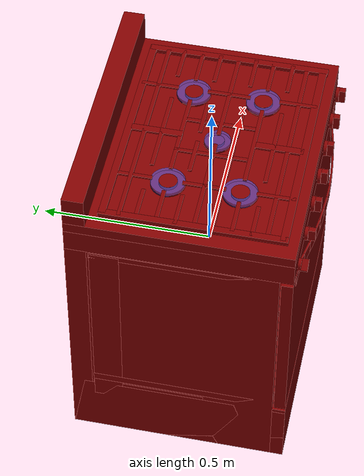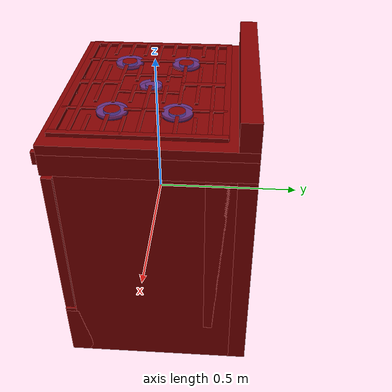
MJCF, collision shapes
<?xml version='1.0' encoding='UTF-8'?>
<mujoco model="model">
  <option timestep="0.002" gravity="0.0 0.0 -9.81"/>
  <compiler angle="radian"/>
  <asset>
    <mesh file="visuals/knob_center.obj" name="knob_center_vis"/>
    <mesh file="visuals/knob_front_left.obj" name="knob_front_left_vis"/>
    <mesh file="visuals/knob_front_right.obj" name="knob_front_right_vis"/>
    <mesh file="visuals/knob_rear_left.obj" name="knob_rear_left_vis"/>
    <mesh file="visuals/knob_rear_right.obj" name="knob_rear_right_vis"/>
    <mesh file="visuals/Body001.obj" name="Body001_vis"/>
    <mesh file="visuals/Door001.obj" name="Door001_vis"/>
    <mesh file="visuals/Door001_Clear.obj" name="Door001_Clear_vis"/>
    <mesh file="visuals/Knob001.obj" name="Knob001_vis"/>
    <mesh file="visuals/Knob002.obj" name="Knob002_vis"/>
    <mesh file="visuals/Shelf001.obj" name="Shelf001_vis"/>
    <texture file="visuals/T_BC001.png" name="Body001_material" type="2d"/>
    <material name="Body001_material" rgba="1 1 1 1.0" texture="Body001_material" shininess="0.05" specular="3"/>
    <texture file="visuals/T_BC001.png" name="knob_center_material" type="2d"/>
    <material name="knob_center_material" rgba="1 1 1 1.0" texture="knob_center_material" shininess="0.1" specular="1"/>
    <texture file="visuals/T_BC001.png" name="knob_front_left_material" type="2d"/>
    <material name="knob_front_left_material" rgba="1 1 1 1.0" texture="knob_front_left_material" shininess="0.1" specular="1"/>
    <texture file="visuals/T_BC001.png" name="knob_front_right_material" type="2d"/>
    <material name="knob_front_right_material" rgba="1 1 1 1.0" texture="knob_front_right_material" shininess="0.1" specular="1"/>
    <texture file="visuals/T_BC001.png" name="knob_rear_left_material" type="2d"/>
    <material name="knob_rear_left_material" rgba="1 1 1 1.0" texture="knob_rear_left_material" shininess="0.1" specular="1"/>
    <texture file="visuals/T_BC001.png" name="knob_rear_right_material" type="2d"/>
    <material name="knob_rear_right_material" rgba="1 1 1 1.0" texture="knob_rear_right_material" shininess="0.1" specular="1"/>
    <texture file="visuals/T_BC001.png" name="Door001_material" type="2d"/>
    <material name="Door001_material" rgba="1 1 1 1.0" texture="Door001_material" shininess="0.1" specular="2"/>
    <texture file="visuals/T_BC001.png" name="Door001_Clear_material" type="2d"/>
    <material name="Door001_Clear_material" rgba="1 1 1 0.5" texture="Door001_Clear_material" shininess="0.1" specular="1"/>
    <texture file="visuals/T_BC001.png" name="Knob001_material" type="2d"/>
    <material name="Knob001_material" rgba="1 1 1 1.0" texture="Knob001_material" shininess="0.1" specular="1"/>
    <texture file="visuals/T_BC001.png" name="Knob002_material" type="2d"/>
    <material name="Knob002_material" rgba="1 1 1 1.0" texture="Knob002_material" shininess="0.1" specular="1"/>
    <texture file="visuals/T_BC001.png" name="Shelf001_material" type="2d"/>
    <material name="Shelf001_material" rgba="1 1 1 1.0" texture="Shelf001_material" shininess="0.1" specular="1"/>
  </asset>
  <default>
    <default class="visual">
      <geom conaffinity="0" contype="0" group="1" type="mesh"/>
    </default>
    <default class="collision">
      <geom group="0" rgba="0.5 0 0 0.5"/>
    </default>
    <default class="spawn">
      <geom group="0" rgba="1 1 1 0.5" contype="0" conaffinity="0"/>
      <site group="0" rgba="1 1 1 0.5"/>
    </default>
    <default class="region">
      <geom group="1" conaffinity="0" contype="0" rgba="0 1 0 0"/>
    </default>
  </default>
  <worldbody>
    <body>
      <body name="object">
        <geom mesh="Body001_vis" type="mesh" solimp="0.998 0.998 0.001" solref="0.001 1" friction="0.95 0.3 0.1" class="visual" material="Body001_material"/>
        <geom class="collision" type="box" pos="6.490154191851616e-07 0.30399298667907715 -0.0001319174189120531" size="0.030633114278316498 0.37950000166893005 0.4929412603378296" quat="0.70710688829422 0.0 0.0 -0.7071066498756409" density="1000.0"/>
        <geom class="collision" type="box" pos="9.133946150541306e-07 0.016015609726309776 0.38297146558761597" size="0.3186107873916626 0.3795003592967987 0.016051506623625755" quat="0.70710688829422 0.0 0.0 -0.7071066498756409" density="1000.0"/>
        <geom class="collision" type="box" pos="-0.3719644546508789 0.005501424893736839 -0.09880691766738892" size="0.007534541189670563 0.26959094405174255 0.3942662477493286" quat="6.715443419125222e-07 0.0 0.0 1.0" density="1000.0"/>
        <geom class="collision" type="box" pos="0.3719663619995117 0.005501288454979658 -0.0988069400191307" size="0.007534429896622896 0.26959091424942017 0.3942663073539734" quat="6.715443419125222e-07 0.0 0.0 1.0" density="1000.0"/>
        <geom class="collision" type="box" pos="-0.0003282291581854224 0.002114064060151577 0.28348594903945923" size="0.2660907208919525 0.3791709840297699 0.009091421961784363" quat="0.70710688829422 0.0 0.0 -0.7071066498756409" density="1000.0"/>
        <geom class="collision" type="box" pos="-0.0003283511323388666 0.0025597289204597473 -0.2571186423301697" size="0.2656450569629669 0.37917110323905945 0.01277067605406046" quat="0.70710688829422 0.0 0.0 -0.7071066498756409" density="1000.0"/>
        <geom class="collision" type="box" pos="-0.0003282290417701006 -0.01719513349235058 -0.38388580083847046" size="0.2853999137878418 0.3791709840297699 0.10918741673231125" quat="0.70710688829422 0.0 0.0 -0.7071066498756409" density="1000.0"/>
        <geom class="collision" type="box" pos="9.200302883982658e-07 0.2244304120540619 -0.02571159601211548" size="0.04224157705903053 0.37950021028518677 0.3127388656139374" quat="0.70710688829422 0.0 0.0 -0.7071066498756409" density="1000.0"/>
        <geom class="collision" type="box" pos="5.369074642658234e-07 0.016116617247462273 -0.39065417647361755" size="0.31850945949554443 0.37949976325035095 0.10241898894309998" quat="0.70710688829422 0.0 0.0 -0.7071066498756409" density="1000.0"/>
        <geom class="collision" type="box" pos="-0.33037447929382324 -0.014261286705732346 0.41151177883148193" size="0.26057958602905273 0.010054773651063442 0.006183722987771034" quat="0.70710688829422 0.0 0.0 -0.7071066498756409" density="1000.0"/>
        <geom class="collision" type="box" pos="0.002468489110469818 0.23599036037921906 0.4131770730018616" size="0.3365636169910431 0.010054755955934525 0.0045184302143752575" quat="1.0 0.0 0.0 1.1920928955078125e-07" density="1000.0"/>
        <geom class="collision" type="box" pos="0.0024684888776391745 -0.26342928409576416 0.4114576578140259" size="0.3365636169910431 0.0110505111515522 0.0062378705479204655" quat="1.0 0.0 0.0 1.1920928955078125e-07" density="1000.0"/>
        <geom class="collision" type="box" pos="0.0024684893433004618 0.18982408940792084 0.41370946168899536" size="0.3365636169910431 0.0055762045085430145 0.003986050840467215" quat="1.0 0.0 0.0 1.1920928955078125e-07" density="1000.0"/>
        <geom class="collision" type="box" pos="-0.28049707412719727 0.14360125362873077 0.4143890142440796" size="0.05359805375337601 0.005576271563768387 0.002830306999385357" quat="1.0 0.0 0.0 1.1920928955078125e-07" density="1000.0"/>
        <geom class="collision" type="box" pos="1.9490253180265427e-05 0.15509746968746185 0.41450071334838867" size="0.010665911249816418 0.07293067127466202 0.0031948338728398085" quat="1.0 0.0 0.0 1.1920928955078125e-07" density="1000.0"/>
        <geom class="collision" type="box" pos="1.9490253180265427e-05 -0.18734626471996307 0.4142610430717468" size="0.010665911249816418 0.07293067127466202 0.003434491576626897" quat="1.0 0.0 0.0 1.1920928955078125e-07" density="1000.0"/>
        <geom class="collision" type="box" pos="-0.28049707412719727 0.03528386354446411 0.4148651957511902" size="0.05359805375337601 0.005576271563768387 0.002830306999385357" quat="1.0 0.0 0.0 1.1920928955078125e-07" density="1000.0"/>
        <geom class="collision" type="box" pos="-0.27441197633743286 0.08756069839000702 0.4141765832901001" size="0.05359805375337601 0.005576271563768387 0.002830306999385357" quat="1.0 0.0 0.0 1.1920928955078125e-07" density="1000.0"/>
        <geom class="collision" type="box" pos="-0.27441197633743286 -0.12051914632320404 0.4148651957511902" size="0.05359805375337601 0.005576271563768387 0.002830306999385357" quat="1.0 0.0 0.0 1.1920928955078125e-07" density="1000.0"/>
        <geom class="collision" type="box" pos="-0.28049707412719727 -0.17510093748569489 0.4148651957511902" size="0.05359805375337601 0.005576271563768387 0.002830306999385357" quat="1.0 0.0 0.0 1.1920928955078125e-07" density="1000.0"/>
        <geom class="collision" type="box" pos="-0.28049707412719727 -0.06756002455949783 0.4148651957511902" size="0.05359805375337601 0.005576271563768387 0.002830306999385357" quat="1.0 0.0 0.0 1.1920928955078125e-07" density="1000.0"/>
        <geom class="collision" type="box" pos="-0.0057657212018966675 -0.21665716171264648 0.41435760259628296" size="0.3283294439315796 0.005841467063874006 0.0033379136584699154" quat="1.0 0.0 0.0 1.1920928955078125e-07" density="1000.0"/>
        <geom class="collision" type="box" pos="0.001403681468218565 -0.1757647693157196 0.4144964814186096" size="0.13427776098251343 0.005576252471655607 0.003199012018740177" quat="1.0 0.0 0.0 1.1920928955078125e-07" density="1000.0"/>
        <geom class="collision" type="box" pos="-8.993595838546753e-05 -0.12000279128551483 0.4144352078437805" size="0.13676711916923523 0.00557625200599432 0.003260307013988495" quat="1.0 0.0 0.0 1.1920928955078125e-07" density="1000.0"/>
        <geom class="collision" type="box" pos="-0.18092212080955505 -0.21526284515857697 0.4148651957511902" size="0.05359805375337601 0.005576271563768387 0.002830306999385357" quat="0.7071067094802856 0.0 0.0 0.7071068286895752" density="1000.0"/>
        <geom class="collision" type="box" pos="-0.18092212080955505 -0.016192562878131866 0.414198100566864" size="0.0605284757912159 0.005576270632445812 0.002830306999385357" quat="0.7071067094802856 0.0 0.0 0.7071068286895752" density="1000.0"/>
        <geom class="collision" type="box" pos="-0.1706777662038803 -0.01651269942522049 0.414198100566864" size="0.15144698321819305 0.005576241295784712 0.002830306999385357" quat="3.1391647326017846e-07 0.0 -0.0 -1.0" density="1000.0"/>
        <geom class="collision" type="box" pos="-0.17953912913799286 0.1820092797279358 0.4143890142440796" size="0.05207677185535431 0.005576271563768387 0.002830306999385357" quat="0.7071067094802856 0.0 0.0 0.7071068286895752" density="1000.0"/>
        <geom class="collision" type="box" pos="-0.06137989088892937 -0.011545727029442787 0.4148651957511902" size="0.10434146970510483 0.005576263647526503 0.002830306999385357" quat="0.7071067094802856 0.0 0.0 0.7071068286895752" density="1000.0"/>
        <geom class="collision" type="box" pos="0.000702686607837677 0.08775985240936279 0.4148651957511902" size="0.1360461413860321 0.00557623989880085 0.002830306999385357" quat="1.9470718370939721e-07 0.0 0.0 -1.0" density="1000.0"/>
        <geom class="collision" type="box" pos="0.0010124444961547852 0.14123158156871796 0.4148651957511902" size="0.13385549187660217 0.005576240364462137 0.002830306999385357" quat="1.9470718370939721e-07 0.0 0.0 -1.0" density="1000.0"/>
        <geom class="collision" type="box" pos="-0.07605856657028198 0.03528386354446411 0.4148651957511902" size="0.056784454733133316 0.005576270166784525 0.002830306999385357" quat="1.9470718370939721e-07 0.0 0.0 -1.0" density="1000.0"/>
        <geom class="collision" type="box" pos="-0.07605856657028198 -0.06747753173112869 0.414276659488678" size="0.056784454733133316 0.005576270166784525 0.00341887422837317" quat="1.9470718370939721e-07 0.0 0.0 -1.0" density="1000.0"/>
        <geom class="collision" type="box" pos="0.07501205801963806 0.03633521497249603 0.4148651957511902" size="0.056784454733133316 0.005576270166784525 0.002830306999385357" quat="1.0 0.0 0.0 1.5099580252808664e-07" density="1000.0"/>
        <geom class="collision" type="box" pos="0.07501205801963806 -0.06727828830480576 0.41418278217315674" size="0.056784454733133316 0.005576270166784525 0.002830306999385357" quat="1.0 0.0 0.0 1.5099580252808664e-07" density="1000.0"/>
        <geom class="collision" type="box" pos="0.1696312427520752 -0.016674689948558807 0.4148651957511902" size="0.15144698321819305 0.005576241295784712 0.002830306999385357" quat="1.0 0.0 0.0 3.2584136988589307e-07" density="1000.0"/>
        <geom class="collision" type="box" pos="0.18131673336029053 -0.015869412571191788 0.4148651957511902" size="0.06144813075661659 0.005576270632445812 0.002830306999385357" quat="0.7071068286895752 0.0 0.0 -0.7071067690849304" density="1000.0"/>
        <geom class="collision" type="box" pos="0.17987559735774994 0.1841205209493637 0.4148651957511902" size="0.05359805375337601 0.005576271563768387 0.002830306999385357" quat="0.7071068286895752 0.0 0.0 -0.7071067690849304" density="1000.0"/>
        <geom class="collision" type="box" pos="0.27945059537887573 0.03641770780086517 0.4148651957511902" size="0.05359805375337601 0.005576271563768387 0.002830306999385357" quat="1.9470718370939721e-07 0.0 -0.0 -1.0" density="1000.0"/>
        <geom class="collision" type="box" pos="0.27945059537887573 0.14395861327648163 0.4148651957511902" size="0.05359805375337601 0.005576271563768387 0.002830306999385357" quat="1.9470718370939721e-07 0.0 -0.0 -1.0" density="1000.0"/>
        <geom class="collision" type="box" pos="0.27336543798446655 0.08937682211399078 0.4148651957511902" size="0.05359805375337601 0.005576271563768387 0.002830306999385357" quat="1.9470718370939721e-07 0.0 -0.0 -1.0" density="1000.0"/>
        <geom class="collision" type="box" pos="0.27336543798446655 -0.12004134058952332 0.4148651957511902" size="0.05359805375337601 0.005576271563768387 0.002830306999385357" quat="1.9470718370939721e-07 0.0 -0.0 -1.0" density="1000.0"/>
        <geom class="collision" type="box" pos="0.27945059537887573 -0.06776450574398041 0.4148651957511902" size="0.05359805375337601 0.005576271563768387 0.002830306999385357" quat="1.9470718370939721e-07 0.0 -0.0 -1.0" density="1000.0"/>
        <geom class="collision" type="box" pos="0.27945059537887573 -0.17550194263458252 0.4148651957511902" size="0.05359805375337601 0.005576271563768387 0.002830306999385357" quat="1.9470718370939721e-07 0.0 -0.0 -1.0" density="1000.0"/>
        <geom class="collision" type="box" pos="0.3293280005455017 -0.016881028190255165 0.41151177883148193" size="0.26057958602905273 0.010054773651063442 0.006183722987771034" quat="0.7071067094802856 0.0 0.0 0.70710688829422" density="1000.0"/>
        <geom class="collision" type="box" pos="0.061096321791410446 -0.011545727029442787 0.4136509299278259" size="0.10434146970510483 0.005576263647526503 0.002830306999385357" quat="0.7071067094802856 0.0 0.0 0.7071068286895752" density="1000.0"/>
        <geom class="collision" type="box" pos="0.18116851150989532 -0.21526284515857697 0.4148651957511902" size="0.05359805375337601 0.005576271563768387 0.002830306999385357" quat="0.7071067094802856 0.0 0.0 0.7071068286895752" density="1000.0"/>
        <geom class="collision" type="box" pos="1.9490278646117076e-05 0.08948928117752075 0.40053272247314453" size="0.010665927082300186 0.006059292703866959 0.01204557716846466" quat="1.0 0.0 0.0 1.1920928955078125e-07" density="1000.0"/>
        <geom class="collision" type="box" pos="-0.05795891210436821 -0.25993072986602783 0.40053272247314453" size="0.0054969689808785915 0.007363713346421719 0.01204557716846466" quat="1.0 0.0 0.0 1.1920928955078125e-07" density="1000.0"/>
        <geom class="collision" type="box" pos="0.057938527315855026 -0.25993072986602783 0.40053272247314453" size="0.0054969689808785915 0.007363713346421719 0.01204557716846466" quat="1.0 0.0 0.0 1.1920928955078125e-07" density="1000.0"/>
        <geom class="collision" type="box" pos="0.32452547550201416 -0.17582465708255768 0.40053272247314453" size="0.005496969446539879 0.0050818282179534435 0.01204557716846466" quat="1.0 0.0 0.0 1.1920928955078125e-07" density="1000.0"/>
        <geom class="collision" type="box" pos="0.32452547550201416 0.1457701474428177 0.40053272247314453" size="0.005496969446539879 0.0050818282179534435 0.01204557716846466" quat="1.0 0.0 0.0 1.1920928955078125e-07" density="1000.0"/>
        <geom class="collision" type="box" pos="-0.3249397873878479 0.14415450394153595 0.40053272247314453" size="0.005496969446539879 0.0050818282179534435 0.01204557716846466" quat="1.0 0.0 0.0 1.1920928955078125e-07" density="1000.0"/>
        <geom class="collision" type="box" pos="-0.3249397873878479 -0.17582465708255768 0.40053272247314453" size="0.005496969446539879 0.0050818282179534435 0.01204557716846466" quat="1.0 0.0 0.0 1.1920928955078125e-07" density="1000.0"/>
        <geom class="collision" type="cylinder" pos="-0.17786778509616852 -0.11678841710090637 0.3877210021018982" size="0.06750943511724472 0.0062187351286411285" quat="1.0 0.0 0.0 0.0" density="1000.0"/>
        <geom class="collision" type="cylinder" pos="-0.17911508679389954 -0.11659633368253708 0.397458553314209" size="0.04891488328576088 0.005066108424216509" quat="1.0 0.0 0.0 0.0" density="1000.0"/>
        <geom class="collision" type="cylinder" pos="-0.17911508679389954 -0.11659633368253708 0.40756863355636597" size="0.026130883023142815 0.005198986269533634" quat="1.0 0.0 0.0 0.0" density="1000.0"/>
        <geom class="collision" type="cylinder" pos="-0.17911508679389954 0.08520851284265518 0.40756863355636597" size="0.026130883023142815 0.005198986269533634" quat="1.0 0.0 0.0 0.0" density="1000.0"/>
        <geom class="collision" type="cylinder" pos="-0.17911508679389954 0.08520851284265518 0.397458553314209" size="0.04891488328576088 0.005066108424216509" quat="1.0 0.0 0.0 0.0" density="1000.0"/>
        <geom class="collision" type="cylinder" pos="-0.17786778509616852 0.08501642942428589 0.3877210021018982" size="0.06750943511724472 0.0062187351286411285" quat="1.0 0.0 0.0 0.0" density="1000.0"/>
        <geom class="collision" type="cylinder" pos="0.1783071905374527 0.08501642942428589 0.3877210021018982" size="0.06750943511724472 0.0062187351286411285" quat="1.0 0.0 0.0 0.0" density="1000.0"/>
        <geom class="collision" type="cylinder" pos="0.17705988883972168 0.08520851284265518 0.397458553314209" size="0.04891488328576088 0.005066108424216509" quat="1.0 0.0 0.0 0.0" density="1000.0"/>
        <geom class="collision" type="cylinder" pos="0.17705988883972168 0.08520851284265518 0.40756863355636597" size="0.026130883023142815 0.005198986269533634" quat="1.0 0.0 0.0 0.0" density="1000.0"/>
        <geom class="collision" type="cylinder" pos="0.17705988883972168 -0.1161077544093132 0.40756863355636597" size="0.026130883023142815 0.005198986269533634" quat="1.0 0.0 0.0 0.0" density="1000.0"/>
        <geom class="collision" type="cylinder" pos="0.17705988883972168 -0.1161077544093132 0.397458553314209" size="0.04891488328576088 0.005066108424216509" quat="1.0 0.0 0.0 0.0" density="1000.0"/>
        <geom class="collision" type="cylinder" pos="0.1783071905374527 -0.1162998378276825 0.3877210021018982" size="0.06750943511724472 0.0062187351286411285" quat="1.0 0.0 0.0 0.0" density="1000.0"/>
        <geom class="collision" type="cylinder" pos="0.0006514975102618337 -0.01722799614071846 0.3967711925506592" size="0.03809307515621185 0.0054397666826844215" quat="1.0 0.0 0.0 0.0" density="1000.0"/>
        <geom class="collision" type="cylinder" pos="0.0007196213118731976 -0.01711960881948471 0.39753973484039307" size="0.020065633580088615 0.00207819533534348" quat="1.0 0.0 0.0 0.0" density="1000.0"/>
        <geom class="collision" type="cylinder" pos="0.0008020717650651932 -0.01711960881948471 0.4072719216346741" size="0.01966751553118229 0.005063491407781839" quat="1.0 0.0 0.0 0.0" density="1000.0"/>
        <geom class="collision" type="box" pos="0.35568249225616455 -0.04684135317802429 0.024103298783302307" size="0.2168421745300293 0.009308330714702606 0.005590490531176329" quat="0.7071067094802856 0.0 0.0 0.7071068286895752" density="1000.0"/>
        <geom class="collision" type="box" pos="-0.35767704248428345 -0.04684135317802429 0.024103298783302307" size="0.2168421745300293 0.009308330714702606 0.005590490531176329" quat="0.7071067094802856 0.0 0.0 0.7071068286895752" density="1000.0"/>
        <geom class="collision" type="box" pos="9.133946150541306e-07 0.016015609726309776 0.33178508281707764" size="0.3186107873916626 0.3795003592967987 0.035134829580783844" quat="0.70710688829422 0.0 0.0 -0.7071066498756409" density="1000.0"/>
        <body name="knob_center">
          <joint axis="0.0 -1.0 0.0" pos="0.11236615478992462 -0.3173580765724182 0.3298296332359314" limited="true" name="knob_center_joint" range="0.0 3.141592653589793" type="hinge" damping="0.05" armature="0.001"/>
          <geom mesh="knob_center_vis" type="mesh" solimp="0.998 0.998 0.001" solref="0.001 1" friction="0.95 0.3 0.1" class="visual" material="knob_center_material"/>
          <geom class="collision" type="cylinder" pos="0.11202891170978546 -0.30954474210739136 0.3293464183807373" size="0.021778227761387825 0.005089934915304184" quat="0.5 0.5 0.4999999701976776 -0.5" density="1000.0"/>
          <geom class="collision" type="box" pos="0.11229107528924942 -0.32348543405532837 0.3294242024421692" size="0.008900512009859085 0.008317057974636555 0.021573401987552643" quat="0.70710688829422 0.0 0.0 -0.7071066498756409" density="1000.0" name="knob_center_main"/>
        </body>
        <body name="knob_front_left">
          <joint axis="0.0 -1.0 0.0" pos="-0.10567551106214523 -0.3173580765724182 0.32953786849975586" limited="true" name="knob_front_left_joint" range="0.0 3.141592653589793" type="hinge" damping="0.05" armature="0.001"/>
          <geom mesh="knob_front_left_vis" type="mesh" solimp="0.998 0.998 0.001" solref="0.001 1" friction="0.95 0.3 0.1" class="visual" material="knob_front_left_material"/>
          <geom class="collision" type="cylinder" pos="-0.10575403273105621 -0.30954474210739136 0.3293464183807373" size="0.021778227761387825 0.005089934915304184" quat="0.5 0.5 0.4999999701976776 -0.5" density="1000.0"/>
          <geom class="collision" type="box" pos="-0.10549186915159225 -0.32348543405532837 0.3294242024421692" size="0.008900512009859085 0.008317057974636555 0.021573401987552643" quat="0.70710688829422 0.0 0.0 -0.7071066498756409" density="1000.0" name="knob_front_left_main"/>
        </body>
        <body name="knob_front_right">
          <joint axis="0.0 -1.0 0.0" pos="0.3330467939376831 -0.3173580765724182 0.32981473207473755" limited="true" name="knob_front_right_joint" range="0.0 3.141592653589793" type="hinge" damping="0.05" armature="0.001"/>
          <geom mesh="knob_front_right_vis" type="mesh" solimp="0.998 0.998 0.001" solref="0.001 1" friction="0.95 0.3 0.1" class="visual" material="knob_front_right_material"/>
          <geom class="collision" type="cylinder" pos="0.3326355814933777 -0.30954474210739136 0.3293464183807373" size="0.021778227761387825 0.005089934915304184" quat="0.5 0.5 0.4999999701976776 -0.5" density="1000.0"/>
          <geom class="collision" type="box" pos="0.33289772272109985 -0.32348543405532837 0.3294242024421692" size="0.008900512009859085 0.008317057974636555 0.021573401987552643" quat="0.70710688829422 0.0 0.0 -0.7071066498756409" density="1000.0" name="knob_front_right_main"/>
        </body>
        <body name="knob_rear_left">
          <joint axis="0.0 -1.0 0.0" pos="0.0019752737134695053 -0.3173580765724182 0.32953786849975586" limited="true" name="knob_rear_left_joint" range="0.0 3.141592653589793" type="hinge" damping="0.05" armature="0.001"/>
          <geom mesh="knob_rear_left_vis" type="mesh" solimp="0.998 0.998 0.001" solref="0.001 1" friction="0.95 0.3 0.1" class="visual" material="knob_rear_left_material"/>
          <geom class="collision" type="cylinder" pos="0.0017690521199256182 -0.30954474210739136 0.3293464183807373" size="0.021778227761387825 0.005089934915304184" quat="0.5 0.5 0.4999999701976776 -0.5" density="1000.0"/>
          <geom class="collision" type="box" pos="0.002031215699389577 -0.32348543405532837 0.3294242024421692" size="0.008900512009859085 0.008317057974636555 0.021573401987552643" quat="0.70710688829422 0.0 0.0 -0.7071066498756409" density="1000.0" name="knob_rear_left_main"/>
        </body>
        <body name="knob_rear_right">
          <joint axis="0.0 -1.0 0.0" pos="0.22260557115077972 -0.3173580765724182 0.33012378215789795" limited="true" name="knob_rear_right_joint" range="0.0 3.141592653589793" type="hinge" damping="0.05" armature="0.001"/>
          <geom mesh="knob_rear_right_vis" type="mesh" solimp="0.998 0.998 0.001" solref="0.001 1" friction="0.95 0.3 0.1" class="visual" material="knob_rear_right_material"/>
          <geom class="collision" type="cylinder" pos="0.2225378006696701 -0.30954474210739136 0.3296049237251282" size="0.021778227761387825 0.005089934915304184" quat="0.5 0.5 0.4999999701976776 -0.5" density="1000.0"/>
          <geom class="collision" type="box" pos="0.22279995679855347 -0.32348543405532837 0.32968267798423767" size="0.008900512009859085 0.008317057974636555 0.021573401987552643" quat="0.70710688829422 0.0 0.0 -0.7071066498756409" density="1000.0" name="knob_rear_right_main"/>
        </body>
        <body name="Door001">
          <joint axis="1.0 0.0 0.0" pos="6.915070116519928e-07 -0.2990294098854065 -0.2656201124191284" limited="true" name="Door001_joint" range="0.0 1.5707963267948966" type="hinge" damping="1" frictionloss="1" armature=".01" stiffness="0.05"/>
          <geom mesh="Door001_vis" type="mesh" solimp="0.998 0.998 0.001" solref="0.001 1" friction="0.95 0.3 0.1" class="visual" material="Door001_material"/>
          <geom class="collision" type="box" pos="-0.0003282262769062072 -0.28507494926452637 0.009530797600746155" size="0.01666570082306862 0.3791710436344147 0.2750031352043152" quat="0.70710688829422 0.0 0.0 -0.7071066498756409" density="1000.0"/>
          <geom class="collision" type="box" pos="-0.3148961663246155 -0.30137747526168823 0.2613299787044525" size="0.0024574636481702328 0.022222572937607765 0.01903529278934002" quat="0.70710688829422 0.0 0.0 -0.7071066498756409" density="1000.0"/>
          <geom class="collision" type="box" pos="-0.270940363407135 -0.30515754222869873 0.26056957244873047" size="0.0024574636481702328 0.022222571074962616 0.0205561351031065" quat="0.6362748742103577 0.0 0.0 -0.7714624404907227" density="1000.0"/>
          <geom class="collision" type="box" pos="-0.22743520140647888 -0.3138009309768677 0.26056957244873047" size="0.0024574636481702328 0.022222571074962616 0.0205561351031065" quat="0.6362748742103577 0.0 0.0 -0.7714624404907227" density="1000.0"/>
          <geom class="collision" type="box" pos="-0.1837860643863678 -0.32179611921310425 0.26056957244873047" size="0.0024574636481702328 0.022222576662898064 0.0205561351031065" quat="0.6439476609230042 0.0 0.0 -0.7650695443153381" density="1000.0"/>
          <geom class="collision" type="box" pos="-0.13977670669555664 -0.3284947872161865 0.26056957244873047" size="0.0024574636481702328 0.022222567349672318 0.0205561351031065" quat="0.6602786183357239 0.0 0.0 -0.7510207295417786" density="1000.0"/>
          <geom class="collision" type="box" pos="-0.09539932012557983 -0.33354467153549194 0.26056957244873047" size="0.0024574636481702328 0.022222572937607765 0.0205561351031065" quat="0.678578794002533 0.0 0.0 -0.7345276474952698" density="1000.0"/>
          <geom class="collision" type="box" pos="-0.05112898722290993 -0.3366588354110718 0.26056957244873047" size="0.0024574636481702328 0.022222572937607765 0.0205561351031065" quat="0.6858806014060974 0.0 0.0 -0.7277140617370605" density="1000.0"/>
          <geom class="collision" type="box" pos="-0.0066461567766964436 -0.3383820056915283 0.26056957244873047" size="0.0024574636481702328 0.022222572937607765 0.0205561351031065" quat="0.7013971209526062 0.0 0.0 -0.7127707004547119" density="1000.0"/>
          <geom class="collision" type="box" pos="0.03728786110877991 -0.33745628595352173 0.26056957244873047" size="0.0024574636481702328 0.022222569212317467 0.0205561351031065" quat="0.718921959400177 0.0 0.0 -0.6950907707214355" density="1000.0"/>
          <geom class="collision" type="box" pos="0.08173882961273193 -0.335046648979187 0.26056957244873047" size="0.0024574636481702328 0.022222574800252914 0.0205561351031065" quat="0.7337282299995422 0.0 0.0 -0.6794430613517761" density="1000.0"/>
          <geom class="collision" type="box" pos="0.1260986328125 -0.3303929567337036 0.26056957244873047" size="0.0024574636481702328 0.022222571074962616 0.0205561351031065" quat="0.7502427101135254 0.0 0.0 -0.6611624956130981" density="1000.0"/>
          <geom class="collision" type="box" pos="0.17006200551986694 -0.32435983419418335 0.26056957244873047" size="0.0024574636481702328 0.022222578525543213 0.0205561351031065" quat="0.7568084001541138 0.0 0.0 -0.6536368131637573" density="1000.0"/>
          <geom class="collision" type="box" pos="0.21386264264583588 -0.3166324496269226 0.26056957244873047" size="0.0024574636481702328 0.022222574800252914 0.0205561351031065" quat="0.7731620073318481 0.0 0.0 -0.6342085599899292" density="1000.0"/>
          <geom class="collision" type="box" pos="0.25716614723205566 -0.30790263414382935 0.26056957244873047" size="0.0024574636481702328 0.022222574800252914 0.0205561351031065" quat="0.7731620073318481 0.0 0.0 -0.6342085599899292" density="1000.0"/>
          <geom class="collision" type="box" pos="0.3008153438568115 -0.300037145614624 0.26056957244873047" size="0.0024574636481702328 0.022222571074962616 0.0205561351031065" quat="0.7578297257423401 0.0 0.0 -0.6524524092674255" density="1000.0"/>
          <geom class="collision" type="box" pos="0.3170894980430603 -0.3001844882965088 0.2613299787044525" size="0.0024574636481702328 0.022222571074962616 0.01903529278934002" quat="0.7207680940628052 0.0 0.0 -0.69317626953125" density="1000.0"/>
          <body name="Door001_Clear">
            <geom mesh="Door001_Clear_vis" type="mesh" solimp="0.998 0.998 0.001" solref="0.001 1" friction="0.95 0.3 0.1" class="visual" material="Door001_Clear_material"/>
            <geom class="collision" type="box" pos="-0.0018881545402109623 -0.2838437557220459 0.02219078131020069" size="0.3464679718017578 0.010744373314082623 0.21997284889221191" quat="1.0 0.0 0.0 0.0" density="1000.0"/>
          </body>
        </body>
        <body name="Knob001">
          <joint axis="0.0 1.0 0.0" pos="-0.3297589421272278 -0.3173580765724182 0.32753875851631165" limited="true" name="Knob001_joint" range="0.0 4.363323129985823" type="hinge" damping="0.05" armature="0.001"/>
          <geom mesh="Knob001_vis" type="mesh" solimp="0.998 0.998 0.001" solref="0.001 1" friction="0.95 0.3 0.1" class="visual" material="Knob001_material"/>
          <geom class="collision" type="cylinder" pos="-0.32981687784194946 -0.3096262216567993 0.3276185989379883" size="0.017223043367266655 0.004585263319313526" quat="0.21008674800395966 0.21008668839931488 0.675176739692688 -0.6751766800880432" density="1000.0"/>
          <geom class="collision" type="box" pos="-0.3298744559288025 -0.3233341574668884 0.3275153636932373" size="0.009020081721246243 0.006863096263259649 0.01700630784034729" quat="0.6268596053123474 -0.3271808326244354 0.3271809220314026 -0.6268591284751892" density="1000.0"/>
        </body>
        <body name="Knob002">
          <joint axis="0.0 1.0 0.0" pos="-0.21431638300418854 -0.31687605381011963 0.3258565068244934" limited="true" name="Knob002_joint" range="0.0 4.014257279586958" type="hinge" damping="0.05" armature="0.001"/>
          <geom mesh="Knob002_vis" type="mesh" solimp="0.998 0.998 0.001" solref="0.001 1" friction="0.95 0.3 0.1" class="visual" material="Knob002_material"/>
          <geom class="collision" type="cylinder" pos="-0.21430985629558563 -0.308935284614563 0.325877845287323" size="0.019157784059643745 0.005100345704704523" quat="0.5018696784973145 0.501893937587738 -0.4980991780757904 0.49812301993370056" density="1000.0"/>
          <geom class="collision" type="box" pos="-0.21436633169651031 -0.3239622116088867 0.32633745670318604" size="0.009881819598376751 0.007518766447901726 0.018631014972925186" quat="0.0007616289658471942 0.7071062922477722 -0.7071064710617065 -0.0007618332165293396" density="1000.0"/>
        </body>
        <body name="Shelf001">
          <joint axis="0.0 -1.0 0.0" pos="-0.0014163809828460217 -0.045786283910274506 0.03486105799674988" limited="true" name="Shelf001_joint" range="0.0 0.35" type="slide" damping="1" frictionloss="1" armature=".01" stiffness="0.05"/>
          <geom mesh="Shelf001_vis" type="mesh" solimp="0.998 0.998 0.001" solref="0.001 1" friction="0.95 0.3 0.1" class="visual" material="Shelf001_material"/>
          <geom class="collision" type="box" pos="-0.001008454943075776 -0.04573242366313934 0.034881338477134705" size="0.20836006104946136 0.3533999025821686 0.004014915321022272" quat="0.70710688829422 0.0 0.0 -0.7071066498756409" density="1000.0"/>
        </body>
        <geom class="region" name="reg_int" type="box" pos="-3.203749656677246e-06 -0.040813080966472626 0.023538023233413696" size="0.3636569231748581 0.22416121512651443 0.26838046312332153"/>
        <site type="cylinder" rgba="0.3 0.4 1 0.5" size="0.04910412058234215 0.009300893172621727" pos="-0.1791195273399353 0.08587392419576645 0.402950257062912" name="burner_on_rear_left"/>
        <site type="cylinder" rgba="0.3 0.4 1 0.5" size="0.04910412058234215 0.009300893172621727" pos="0.17771181464195251 0.08587392419576645 0.402950257062912" name="burner_on_rear_right"/>
        <site type="cylinder" rgba="0.3 0.4 1 0.5" size="0.04910412058234215 0.009300893172621727" pos="0.1781647503376007 -0.11547911912202835 0.402950257062912" name="burner_on_front_right"/>
        <site type="cylinder" rgba="0.3 0.4 1 0.5" size="0.03738318011164665 0.009300893172621727" pos="0.0014605133328586817 -0.017544277012348175 0.40311214327812195" name="burner_on_center"/>
        <site type="cylinder" rgba="0.3 0.4 1 0.5" size="0.04910412058234215 0.009300893172621727" pos="-0.17922016978263855 -0.11620382219552994 0.402950257062912" name="burner_on_front_left"/>
        <site name="burner_rear_left_place_site" type="cylinder" rgba="0.3 0.4 1 0" size="0.04910412058234215 0.009300893172621727" pos="-0.1791195273399353 0.08587392419576645 0.402950257062912"/>
        <site name="burner_rear_right_place_site" type="cylinder" rgba="0.3 0.4 1 0" size="0.04910412058234215 0.009300893172621727" pos="0.17771181464195251 0.08587392419576645 0.402950257062912"/>
        <site name="burner_front_right_place_site" type="cylinder" rgba="0.3 0.4 1 0" size="0.04910412058234215 0.009300893172621727" pos="0.1781647503376007 -0.11547911912202835 0.402950257062912"/>
        <site name="burner_center_place_site" type="cylinder" rgba="0.3 0.4 1 0" size="0.03738318011164665 0.009300893172621727" pos="0.0014605133328586817 -0.017544277012348175 0.40311214327812195"/>
        <site name="burner_front_left_place_site" type="cylinder" rgba="0.3 0.4 1 0" size="0.04910412058234215 0.009300893172621727" pos="-0.17922016978263855 -0.11620382219552994 0.402950257062912"/>
        <geom class="region" name="reg_main" type="box" pos="7.003545761108398e-07 0.01601564884185791 -0.06307661533355713" size="0.37950003147125244 0.31861060857772827 0.4299965500831604"/>
      </body>
    </body>
  </worldbody>
  <actuator>
    <motor name="knob_center_joint_actuator" joint="knob_center_joint" gear="10"/>
    <motor name="knob_front_left_joint_actuator" joint="knob_front_left_joint" gear="10"/>
    <motor name="knob_front_right_joint_actuator" joint="knob_front_right_joint" gear="10"/>
    <motor name="knob_rear_left_joint_actuator" joint="knob_rear_left_joint" gear="10"/>
    <motor name="knob_rear_right_joint_actuator" joint="knob_rear_right_joint" gear="10"/>
    <motor name="Door001_joint_actuator" joint="Door001_joint" gear="50"/>
    <motor name="Knob001_joint_actuator" joint="Knob001_joint" gear="50"/>
    <motor name="Knob002_joint_actuator" joint="Knob002_joint" gear="50"/>
    <motor name="Shelf001_joint_actuator" joint="Shelf001_joint" gear="50"/>
  </actuator>
</mujoco>
